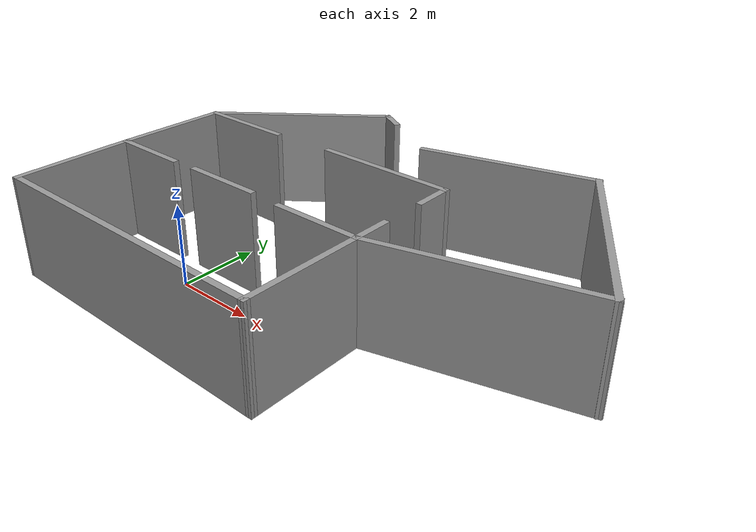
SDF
<?xml version='1.0'?>
<sdf version='1.6'>
  <model name='moj_model'>
    <pose frame=''>3.10005 2.17464 0 0 -0 0</pose>
    <link name='Wall_0'>
      <collision name='Wall_0_Collision'>
        <geometry>
          <box>
            <size>3 0.15 2.5</size>
          </box>
        </geometry>
        <pose frame=''>0 0 1.25 0 -0 0</pose>
      </collision>
      <visual name='Wall_0_Visual'>
        <pose frame=''>0 0 1.25 0 -0 0</pose>
        <geometry>
          <box>
            <size>3 0.15 2.5</size>
          </box>
        </geometry>
        <material>
          <script>
            <uri>file://media/materials/scripts/gazebo.material</uri>
            <name>Gazebo/Grey</name>
          </script>
          <ambient>1 1 1 1</ambient>
        </material>
        <meta>
          <layer>0</layer>
        </meta>
      </visual>
      <pose frame=''>-6.06005 -2.76964 0 0 -0 1.5708</pose>
    </link>
    <link name='Wall_1'>
      <collision name='Wall_1_Collision'>
        <geometry>
          <box>
            <size>2 0.15 2.5</size>
          </box>
        </geometry>
        <pose frame=''>0 0 1.25 0 -0 0</pose>
      </collision>
      <visual name='Wall_1_Visual'>
        <pose frame=''>0 0 1.25 0 -0 0</pose>
        <geometry>
          <box>
            <size>2 0.15 2.5</size>
          </box>
        </geometry>
        <material>
          <script>
            <uri>file://media/materials/scripts/gazebo.material</uri>
            <name>Gazebo/Grey</name>
          </script>
          <ambient>1 1 1 1</ambient>
        </material>
        <meta>
          <layer>0</layer>
        </meta>
      </visual>
      <pose frame=''>-5.13505 -1.34464 0 0 -0 0</pose>
    </link>
    <link name='Wall_10'>
      <collision name='Wall_10_Collision'>
        <geometry>
          <box>
            <size>3 0.15 2.5</size>
          </box>
        </geometry>
        <pose frame=''>0 0 1.25 0 -0 0</pose>
      </collision>
      <visual name='Wall_10_Visual'>
        <pose frame=''>0 0 1.25 0 -0 0</pose>
        <geometry>
          <box>
            <size>3 0.15 2.5</size>
          </box>
        </geometry>
        <material>
          <script>
            <uri>file://media/materials/scripts/gazebo.material</uri>
            <name>Gazebo/Grey</name>
          </script>
          <ambient>1 1 1 1</ambient>
        </material>
        <meta>
          <layer>0</layer>
        </meta>
      </visual>
      <pose frame=''>1.34995 -2.79964 0 0 -0 -1.5708</pose>
    </link>
    <link name='Wall_11'>
      <collision name='Wall_11_Collision'>
        <geometry>
          <box>
            <size>7.56006 0.15 2.5</size>
          </box>
        </geometry>
        <pose frame=''>0 0 1.25 0 -0 0</pose>
      </collision>
      <visual name='Wall_11_Visual'>
        <pose frame=''>0 0 1.25 0 -0 0</pose>
        <geometry>
          <box>
            <size>7.56006 0.15 2.5</size>
          </box>
        </geometry>
        <material>
          <script>
            <uri>file://media/materials/scripts/gazebo.material</uri>
            <name>Gazebo/Grey</name>
          </script>
          <ambient>1 1 1 1</ambient>
        </material>
        <meta>
          <layer>0</layer>
        </meta>
      </visual>
      <pose frame=''>-2.35505 -4.20964 0 0 -0 3.13754</pose>
    </link>
    <link name='Wall_13'>
      <collision name='Wall_13_Collision'>
        <geometry>
          <box>
            <size>1 0.15 2.5</size>
          </box>
        </geometry>
        <pose frame=''>0 0 1.25 0 -0 0</pose>
      </collision>
      <visual name='Wall_13_Visual'>
        <pose frame=''>0 0 1.25 0 -0 0</pose>
        <geometry>
          <box>
            <size>1 0.15 2.5</size>
          </box>
        </geometry>
        <material>
          <script>
            <uri>file://media/materials/scripts/gazebo.material</uri>
            <name>Gazebo/Grey</name>
          </script>
          <ambient>1 1 1 1</ambient>
        </material>
        <meta>
          <layer>0</layer>
        </meta>
      </visual>
      <pose frame=''>1.34995 -0.949641 0 0 -0 1.5708</pose>
    </link>
    <link name='Wall_15'>
      <collision name='Wall_15_Collision'>
        <geometry>
          <box>
            <size>1 0.15 2.5</size>
          </box>
        </geometry>
        <pose frame=''>0 0 1.25 0 -0 0</pose>
      </collision>
      <visual name='Wall_15_Visual'>
        <pose frame=''>0 0 1.25 0 -0 0</pose>
        <geometry>
          <box>
            <size>1 0.15 2.5</size>
          </box>
        </geometry>
        <material>
          <script>
            <uri>file://media/materials/scripts/gazebo.material</uri>
            <name>Gazebo/Grey</name>
          </script>
          <ambient>1 1 1 1</ambient>
        </material>
        <meta>
          <layer>0</layer>
        </meta>
      </visual>
      <pose frame=''>1.36995 1.05036 0 0 -0 1.5708</pose>
    </link>
    <link name='Wall_17'>
      <collision name='Wall_17_Collision'>
        <geometry>
          <box>
            <size>3.5 0.15 2.5</size>
          </box>
        </geometry>
        <pose frame=''>0 0 1.25 0 -0 0</pose>
      </collision>
      <visual name='Wall_17_Visual'>
        <pose frame=''>0 0 1.25 0 -0 0</pose>
        <geometry>
          <box>
            <size>3.5 0.15 2.5</size>
          </box>
        </geometry>
        <material>
          <script>
            <uri>file://media/materials/scripts/gazebo.material</uri>
            <name>Gazebo/Grey</name>
          </script>
          <ambient>1 1 1 1</ambient>
        </material>
        <meta>
          <layer>0</layer>
        </meta>
      </visual>
      <pose frame=''>-0.305049 1.47536 0 0 -0 3.14159</pose>
    </link>
    <link name='Wall_6'>
      <collision name='Wall_6_Collision'>
        <geometry>
          <box>
            <size>2 0.15 2.5</size>
          </box>
        </geometry>
        <pose frame=''>0 0 1.25 0 -0 0</pose>
      </collision>
      <visual name='Wall_6_Visual'>
        <pose frame=''>0 0 1.25 0 -0 0</pose>
        <geometry>
          <box>
            <size>2 0.15 2.5</size>
          </box>
        </geometry>
        <material>
          <script>
            <uri>file://media/materials/scripts/gazebo.material</uri>
            <name>Gazebo/Grey</name>
          </script>
          <ambient>1 1 1 1</ambient>
        </material>
        <meta>
          <layer>0</layer>
        </meta>
      </visual>
      <pose frame=''>-2.57505 -1.31464 0 0 -0 0</pose>
    </link>
    <link name='Wall_8'>
      <collision name='Wall_8_Collision'>
        <geometry>
          <box>
            <size>2.25 0.15 2.5</size>
          </box>
        </geometry>
        <pose frame=''>0 0 1.25 0 -0 0</pose>
      </collision>
      <visual name='Wall_8_Visual'>
        <pose frame=''>0 0 1.25 0 -0 0</pose>
        <geometry>
          <box>
            <size>2.25 0.15 2.5</size>
          </box>
        </geometry>
        <material>
          <script>
            <uri>file://media/materials/scripts/gazebo.material</uri>
            <name>Gazebo/Grey</name>
          </script>
          <ambient>1 1 1 1</ambient>
        </material>
        <meta>
          <layer>0</layer>
        </meta>
      </visual>
      <pose frame=''>0.299951 -1.37464 0 0 -0 0</pose>
    </link>
    <link name='Wall_82'>
      <collision name='Wall_82_Collision'>
        <geometry>
          <box>
            <size>2.5 0.15 2.5</size>
          </box>
        </geometry>
        <pose frame=''>0 0 1.25 0 -0 0</pose>
      </collision>
      <visual name='Wall_82_Visual'>
        <pose frame=''>0 0 1.25 0 -0 0</pose>
        <geometry>
          <box>
            <size>2.5 0.15 2.5</size>
          </box>
        </geometry>
        <material>
          <script>
            <uri>file://media/materials/scripts/gazebo.material</uri>
            <name>Gazebo/Grey</name>
          </script>
          <ambient>1 1 1 1</ambient>
        </material>
        <meta>
          <layer>0</layer>
        </meta>
      </visual>
      <pose frame=''>-4.80738 1.39689 0 0 -0 3.14159</pose>
    </link>
    <link name='Wall_83'>
      <collision name='Wall_83_Collision'>
        <geometry>
          <box>
            <size>2.89263 0.15 2.5</size>
          </box>
        </geometry>
        <pose frame=''>0 0 1.25 0 -0 0</pose>
      </collision>
      <visual name='Wall_83_Visual'>
        <pose frame=''>0 0 1.25 0 -0 0</pose>
        <geometry>
          <box>
            <size>2.89263 0.15 2.5</size>
          </box>
        </geometry>
        <material>
          <script>
            <uri>file://media/materials/scripts/gazebo.material</uri>
            <name>Gazebo/Grey</name>
          </script>
          <ambient>1 1 1 1</ambient>
        </material>
        <meta>
          <layer>0</layer>
        </meta>
      </visual>
      <pose frame=''>-6.02121 0.026122 0 0 -0 -1.59912</pose>
    </link>
    <link name='Wall_85'>
      <collision name='Wall_85_Collision'>
        <geometry>
          <box>
            <size>5 0.15 2.5</size>
          </box>
        </geometry>
        <pose frame=''>0 0 1.25 0 -0 0</pose>
      </collision>
      <visual name='Wall_85_Visual'>
        <pose frame=''>0 0 1.25 0 -0 0</pose>
        <geometry>
          <box>
            <size>5 0.15 2.5</size>
          </box>
        </geometry>
        <material>
          <script>
            <uri>file://media/materials/scripts/gazebo.material</uri>
            <name>Gazebo/Grey</name>
          </script>
          <ambient>1 1 1 1</ambient>
        </material>
        <meta>
          <layer>0</layer>
        </meta>
      </visual>
      <pose frame=''>3.69232 -0.747005 0 0 -0 0.261799</pose>
    </link>
    <link name='Wall_86'>
      <collision name='Wall_86_Collision'>
        <geometry>
          <box>
            <size>5 0.15 2.5</size>
          </box>
        </geometry>
        <pose frame=''>0 0 1.25 0 -0 0</pose>
      </collision>
      <visual name='Wall_86_Visual'>
        <pose frame=''>0 0 1.25 0 -0 0</pose>
        <geometry>
          <box>
            <size>5 0.15 2.5</size>
          </box>
        </geometry>
        <material>
          <script>
            <uri>file://media/materials/scripts/gazebo.material</uri>
            <name>Gazebo/Grey</name>
          </script>
          <ambient>1 1 1 1</ambient>
        </material>
        <meta>
          <layer>0</layer>
        </meta>
      </visual>
      <pose frame=''>4.82219 1.98074 0 0 -0 2.0944</pose>
    </link>
    <link name='Wall_87'>
      <collision name='Wall_87_Collision'>
        <geometry>
          <box>
            <size>4.25 0.15 2.5</size>
          </box>
        </geometry>
        <pose frame=''>0 0 1.25 0 -0 0</pose>
      </collision>
      <visual name='Wall_87_Visual'>
        <pose frame=''>0 0 1.25 0 -0 0</pose>
        <geometry>
          <box>
            <size>4.25 0.15 2.5</size>
          </box>
        </geometry>
        <material>
          <script>
            <uri>file://media/materials/scripts/gazebo.material</uri>
            <name>Gazebo/Grey</name>
          </script>
          <ambient>1 1 1 1</ambient>
        </material>
        <meta>
          <layer>0</layer>
        </meta>
      </visual>
      <pose frame=''>1.62954 3.55028 0 0 -0 -2.87979</pose>
    </link>
    <link name='Wall_89'>
      <collision name='Wall_89_Collision'>
        <geometry>
          <box>
            <size>4.70668 0.15 2.5</size>
          </box>
        </geometry>
        <pose frame=''>0 0 1.25 0 -0 0</pose>
      </collision>
      <visual name='Wall_89_Visual'>
        <pose frame=''>0 0 1.25 0 -0 0</pose>
        <geometry>
          <box>
            <size>4.70668 0.15 2.5</size>
          </box>
        </geometry>
        <material>
          <script>
            <uri>file://media/materials/scripts/gazebo.material</uri>
            <name>Gazebo/Grey</name>
          </script>
          <ambient>1 1 1 1</ambient>
        </material>
        <meta>
          <layer>0</layer>
        </meta>
      </visual>
      <pose frame=''>-4.18407 2.79579 0 0 -0 -2.48047</pose>
    </link>
    <link name='Wall_91'>
      <collision name='Wall_91_Collision'>
        <geometry>
          <box>
            <size>0.75 0.15 2.5</size>
          </box>
        </geometry>
        <pose frame=''>0 0 1.25 0 -0 0</pose>
      </collision>
      <visual name='Wall_91_Visual'>
        <pose frame=''>0 0 1.25 0 -0 0</pose>
        <geometry>
          <box>
            <size>0.75 0.15 2.5</size>
          </box>
        </geometry>
        <material>
          <script>
            <uri>file://media/materials/scripts/gazebo.material</uri>
            <name>Gazebo/Grey</name>
          </script>
          <ambient>1 1 1 1</ambient>
        </material>
        <meta>
          <layer>0</layer>
        </meta>
      </visual>
      <pose frame=''>-2.12596 4.0447 0 0 -0 -0.523599</pose>
    </link>
    <static>1</static>
  </model>
</sdf>
